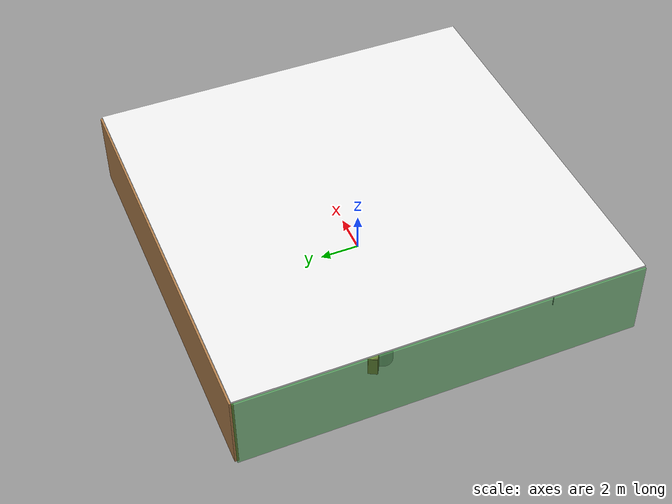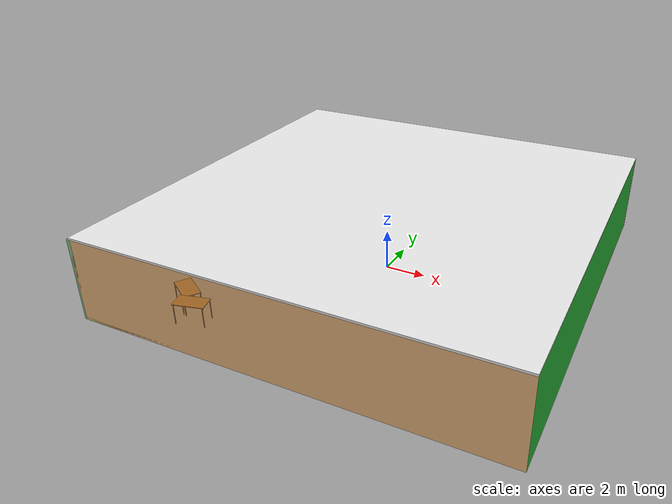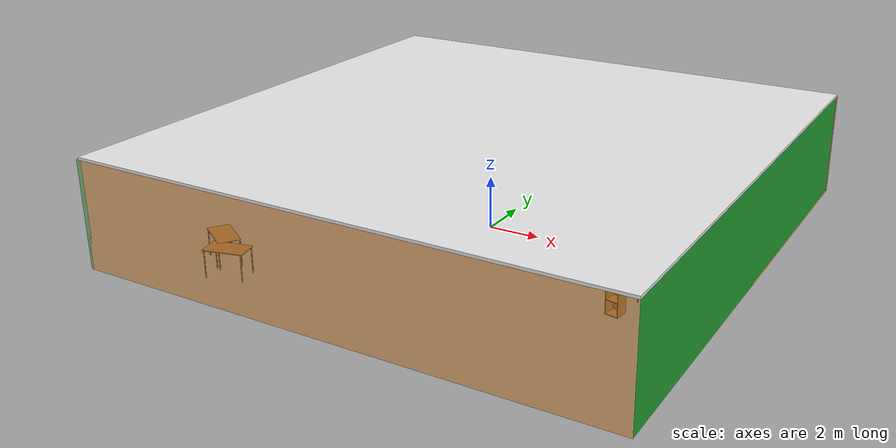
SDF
<sdf version="1.4">
 <world name="default">
  <physics type="ode">
   <max_step_size>0.001</max_step_size>
   <real_time_factor>1</real_time_factor>
   <real_time_update_rate>1000</real_time_update_rate>
   <gravity>0 0 -9.8</gravity>
  </physics>
  <scene><ambient>0.4 0.4 0.4 1</ambient><background>0.7 0.7 0.7 1</background><shadows>1</shadows></scene>
  <model name="Surrounding">
   <static>1</static>
   <link name="Ceiling">
    <collision name="Ceiling_Collision"><geometry><box><size>20 20 0.1</size></box></geometry></collision>
    <visual name="Ceiling_Visual">
     <geometry><box><size>20 20 0.1</size></box></geometry>
     <material>
      <script><uri>file://media/materials/scripts/gazebo.material</uri><name>Gazebo/WhiteGlow</name></script>
     </material>
    </visual>
    <pose>0 0 4.05 0 0 0</pose>
   </link>
   <link name="Wall_South">
    <collision name="Wall_South_Collision">
     <geometry><box><size>20 0 4</size></box></geometry>
     <pose>0 0 2 0 -0 0</pose>
    </collision>
    <visual name="Wall_South_Visual">
     <pose>0 0 2 0 -0 0</pose>
     <geometry><box><size>20 0 4</size></box></geometry>
     <material>
      <script>
       <uri>file://media/materials/scripts/gazebo.material</uri>
       <name>Gazebo/OrangeTransparent</name>
      </script>
     </material>
    </visual>
    <velocity_decay><linear>0</linear><angular>0</angular></velocity_decay>
    <pose>0 -10 0 0 -0 0</pose>
   </link>
   <link name="Wall_East">
    <collision name="Wall_21_Collision">
     <geometry><box><size>20 0 4</size></box></geometry>
     <pose>0 0 2 0 -0 0</pose>
    </collision>
    <visual name="Wall_21_Visual">
     <pose>0 0 2 0 -0 0</pose>
     <geometry><box><size>20 0 4</size></box></geometry>
     <material>
      <script><uri>file://media/materials/scripts/gazebo.material</uri><name>Gazebo/Green</name></script>
     </material>
    </visual>
    <velocity_decay><linear>0</linear><angular>0</angular></velocity_decay>
    <pose>10 0 0 0 -0 1.5708</pose>
   </link>
   <link name="Wall_North">
    <collision name="Wall_22_Collision">
     <geometry><box><size>20 0.2 4</size></box></geometry>
     <pose>0 0 2 0 -0 0</pose>
    </collision>
    <visual name="Wall_22_Visual">
     <pose>0 0 2 0 -0 0</pose>
     <geometry><box><size>20 0.2 4</size></box></geometry>
     <material>
      <script><uri>file://media/materials/scripts/gazebo.material</uri><name>Gazebo/WoodFloor</name></script>
     </material>
    </visual>
    <velocity_decay><linear>0</linear><angular>0</angular></velocity_decay>
    <pose>0 10 0 0 -0 0</pose>
   </link>
   <link name="Wall_West">
    <collision name="Wall_23_Collision">
     <geometry><box><size>20 0.2 4</size></box></geometry>
     <pose>0 0 2 0 -0 0</pose>
    </collision>
    <visual name="Wall_23_Visual">
     <pose>0 0 2 0 -0 0</pose>
     <geometry><box><size>20 0.2 4</size></box></geometry>
     <material>
      <script><uri>file://media/materials/scripts/gazebo.material</uri><name>Gazebo/GreenTransparent</name></script>
     </material>
    </visual>
    <velocity_decay><linear>0</linear><angular>0</angular></velocity_decay>
    <pose>-10 0 0 0 0 -1.5708</pose>
   </link>
   <link name="Ground_link">
    <collision name="collision">
     <pose>0 0 .05 0 -0 0</pose>
     <geometry><box><size>20 20 0.1</size></box></geometry>
    </collision>
    <visual name="visual">
     <pose>0 0 .05 0 -0 0</pose>
     <geometry><box><size>20 20 0.1</size></box></geometry>
     <material>
      <script>
       <uri>file://media/materials/scripts/gazebo.material</uri>
       <name>Gazebo/YellowTransparent</name>
      </script>
     </material>
    </visual>
   </link>
   <static>1</static>
  </model>
  <spherical_coordinates>
   <surface_model>EARTH_WGS84</surface_model>
   <latitude_deg>0</latitude_deg>
   <longitude_deg>0</longitude_deg>
   <elevation>0</elevation>
   <heading_deg>0</heading_deg>
  </spherical_coordinates>
  <light name="lightball_0" type="diffuse">
   <diffuse>0.8 0.8 0.8 1</diffuse>
   <specular>0.2 0.2 0.2 1</specular>
   <attenuation>
    <range>100</range>
    <constant>0.7</constant>
    <linear>0.01</linear>
    <quadratic>0.001</quadratic>
   </attenuation>
   <direction>-0.5 0.1 -0.9</direction>
   <pose>6.99097295968 -3.45821378181 2.87910520308 0 0 0</pose>
  </light>
  <light name="lightball_1" type="diffuse">
   <diffuse>0.8 0.8 0.8 1</diffuse>
   <specular>0.2 0.2 0.2 1</specular>
   <attenuation>
    <range>100</range>
    <constant>0.7</constant>
    <linear>0.01</linear>
    <quadratic>0.001</quadratic>
   </attenuation>
   <direction>-0.5 0.1 -0.9</direction>
   <pose>-4.11690492057 -9.9567745991 2.62143650819 0 0 0</pose>
  </light>
  <light name="lightball_2" type="diffuse">
   <diffuse>0.8 0.8 0.8 1</diffuse>
   <specular>0.2 0.2 0.2 1</specular>
   <attenuation>
    <range>100</range>
    <constant>0.7</constant>
    <linear>0.01</linear>
    <quadratic>0.001</quadratic>
   </attenuation>
   <direction>-0.5 0.1 -0.9</direction>
   <pose>-5.6639654438 6.21006644633 3.53866552867 0 0 0</pose>
  </light>
  <light name="lightball_3" type="diffuse">
   <diffuse>0.8 0.8 0.8 1</diffuse>
   <specular>0.2 0.2 0.2 1</specular>
   <attenuation>
    <range>100</range>
    <constant>0.7</constant>
    <linear>0.01</linear>
    <quadratic>0.001</quadratic>
   </attenuation>
   <direction>-0.5 0.1 -0.9</direction>
   <pose>5.58118659415 -6.22517165123 1.95073887856 0 0 0</pose>
  </light>
  <light name="lightball_4" type="diffuse">
   <diffuse>0.8 0.8 0.8 1</diffuse>
   <specular>0.2 0.2 0.2 1</specular>
   <attenuation>
    <range>100</range>
    <constant>0.7</constant>
    <linear>0.01</linear>
    <quadratic>0.001</quadratic>
   </attenuation>
   <direction>-0.5 0.1 -0.9</direction>
   <pose>-1.11242398058 6.68356759659 0.935816790602 0 0 0</pose>
  </light>
  <include><uri>model://table</uri><pose>-6.57539890443 -7.16558690031 0 0 0 2.57488310132</pose></include>
  <include><uri>model://cabinet</uri><pose>-7.66254551111 2.5070186889 0 0 0 2.63201600809</pose></include>
  <include><uri>model://table</uri><pose>-5.63606871078 -7.99810190832 0 0 0 0.246514657716</pose></include>
  <include>
   <uri>model://textured_shapes</uri>
   <pose>-5.39395216805 2.16544838549 0 0 0 1.91916783405</pose>
  </include>
  <include>
   <uri>model://textured_shapes</uri>
   <pose>-1.66349159075 -0.445728821676 0 0 0 1.22495547922</pose>
  </include>
  <include>
   <uri>model://robocup_3Dsim_goal</uri>
   <pose>4.81440562375 3.45063101623 0 0 0 2.50169005228</pose>
  </include>
  <include><uri>model://cabinet</uri><pose>6.83284040042 -3.98175866391 0 0 0 1.37483492966</pose></include>
  <include><uri>model://table</uri><pose>7.87684228947 -2.61065101384 0 0 0 3.02134930933</pose></include>
 </world>
</sdf>

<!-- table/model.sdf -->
<sdf version="1.5">
  <model name="table">
    <static>true</static>
    <link name="link">
      <collision name="surface">
        <pose>0 0 1.0 0 0 0</pose>
        <geometry>
          <box>
            <size>1.5 0.8 0.03</size>
          </box>
        </geometry>
        <surface>
          <friction>
            <ode>
              <mu>0.6</mu>
              <mu2>0.6</mu2>
            </ode>
          </friction>
        </surface>
      </collision>
      <visual name="visual1">
        <pose>0 0 1.0 0 0 0</pose>
        <geometry>
          <box>
            <size>1.5 0.8 0.03</size>
          </box>
        </geometry>
        <material>
          <script>
            <uri>model://media/materials/scripts/gazebo.material</uri>
            <name>Gazebo/Wood</name>
          </script>
        </material>
      </visual>
      <collision name="front_left_leg">
        <pose>0.68 0.38 0.5 0 0 0</pose>
        <geometry>
          <cylinder>
            <radius>0.02</radius>
            <length>1.0</length>
          </cylinder>
        </geometry>
      </collision>
      <visual name="front_left_leg">
        <pose>0.68 0.38 0.5 0 0 0</pose>
        <geometry>
          <cylinder>
            <radius>0.02</radius>
            <length>1.0</length>
          </cylinder>
        </geometry>
        <material>
          <script>
            <uri>model://media/materials/scripts/gazebo.material</uri>
            <name>Gazebo/Grey</name>
          </script>
        </material>
      </visual>
      <collision name="front_right_leg">
        <pose>0.68 -0.38 0.5 0 0 0</pose>
        <geometry>
          <cylinder>
            <radius>0.02</radius>
            <length>1.0</length>
          </cylinder>
        </geometry>
      </collision>
      <visual name="front_right_leg">
        <pose>0.68 -0.38 0.5 0 0 0</pose>
        <geometry>
          <cylinder>
            <radius>0.02</radius>
            <length>1.0</length>
          </cylinder>
        </geometry>
        <material>
          <script>
            <uri>model://media/materials/scripts/gazebo.material</uri>
            <name>Gazebo/Grey</name>
          </script>
        </material>
      </visual>
      <collision name="back_right_leg">
        <pose>-0.68 -0.38 0.5 0 0 0</pose>
        <geometry>
          <cylinder>
            <radius>0.02</radius>
            <length>1.0</length>
          </cylinder>
        </geometry>
      </collision>
      <visual name="back_right_leg">
        <pose>-0.68 -0.38 0.5 0 0 0</pose>
        <geometry>
          <cylinder>
            <radius>0.02</radius>
            <length>1.0</length>
          </cylinder>
        </geometry>
        <material>
          <script>
            <uri>model://media/materials/scripts/gazebo.material</uri>
            <name>Gazebo/Grey</name>
          </script>
        </material>
      </visual>
      <collision name="back_left_leg">
        <pose>-0.68 0.38 0.5 0 0 0</pose>
        <geometry>
          <cylinder>
            <radius>0.02</radius>
            <length>1.0</length>
          </cylinder>
        </geometry>
      </collision>
      <visual name="back_left_leg">
        <pose>-0.68 0.38 0.5 0 0 0</pose>
        <geometry>
          <cylinder>
            <radius>0.02</radius>
            <length>1.0</length>
          </cylinder>
        </geometry>
        <material>
          <script>
            <uri>model://media/materials/scripts/gazebo.material</uri>
            <name>Gazebo/Grey</name>
          </script>
        </material>
      </visual>
    </link>
  </model>
</sdf>

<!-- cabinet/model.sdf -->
<sdf version="1.5">
  <model name="cabinet">
    <static>true</static>
    <link name="cabinet_bottom_plate">
      <inertial>
        <pose>0 0 -1 0 0 0</pose>
        <inertia>
          <ixx>2.050000</ixx>
          <ixy>0</ixy>
          <ixz>0</ixz>
          <iyy>2.050000</iyy>
          <iyz>0</iyz>
          <izz>2.050000</izz>
        </inertia>
        <mass>25.000000</mass>
      </inertial>
      <collision name="cabinet_bottom_plate_geom">
        <pose>0 0 0.010000 0 0 0</pose>
        <geometry>
          <box>
            <size>0.450000 0.450000 0.020000</size>
          </box>
        </geometry>
      </collision>
      <visual name="cabinet_bottom_plate_geom_visual">
        <pose>0 0 0.010000 0 0 0</pose>
        <geometry>
          <box>
            <size>0.450000 0.450000 0.020000</size>
          </box>
        </geometry>
        <material>
          <script>
            <uri>model://media/materials/scripts/gazebo.material</uri>
            <name>Gazebo/Wood</name>
          </script>
        </material>
      </visual>
      <collision name="cabinet_bottom_plate_geom_cabinet_back_plate">
        <pose>0.235000 0 0.510000 0 0 0</pose>
        <geometry>
          <box>
            <size>0.020000 0.450000 1.020000</size>
          </box>
        </geometry>
      </collision>
      <visual name="cabinet_bottom_plate_geom_cabinet_back_plate_visual">
        <pose>0.235000 0 0.510000 0 0 0</pose>
        <geometry>
          <box>
            <size>0.020000 0.450000 1.020000</size>
          </box>
        </geometry>
        <material>
          <script>
            <uri>model://media/materials/scripts/gazebo.material</uri>
            <name>Gazebo/Wood</name>
          </script>
        </material>
      </visual>
      <collision name="cabinet_bottom_plate_geom_cabinet_left_plate">
        <pose>0 0.235000 0.510000 0 0 0</pose>
        <geometry>
          <box>
            <size>0.450000 0.020000 1.020000</size>
          </box>
        </geometry>
      </collision>
      <visual name="cabinet_bottom_plate_geom_cabinet_left_plate_visual">
        <pose>0 0.235000 0.510000 0 0 0</pose>
        <geometry>
          <box>
            <size>0.450000 0.020000 1.020000</size>
          </box>
        </geometry>
        <material>
          <script>
            <uri>model://media/materials/scripts/gazebo.material</uri>
            <name>Gazebo/Wood</name>
          </script>
        </material>
      </visual>
      <collision name="cabinet_bottom_plate_geom_cabinet_middle_plate">
        <pose>0 0 0.510000 0 0 0</pose>
        <geometry>
          <box>
            <size>0.450000 0.450000 0.020000</size>
          </box>
        </geometry>
      </collision>
      <visual name="cabinet_bottom_plate_geom_cabinet_middle_plate_visual">
        <pose>0 0 0.510000 0 0 0</pose>
        <geometry>
          <box>
            <size>0.450000 0.450000 0.020000</size>
          </box>
        </geometry>
        <material>
          <script>
            <uri>model://media/materials/scripts/gazebo.material</uri>
            <name>Gazebo/Wood</name>
          </script>
        </material>
      </visual>
      <collision name="cabinet_bottom_plate_geom_cabinet_right_plate">
        <pose>0 -0.235000 0.510000 0 0 0</pose>
        <geometry>
          <box>
            <size>0.450000 0.020000 1.020000</size>
          </box>
        </geometry>
      </collision>
      <visual name="cabinet_bottom_plate_geom_cabinet_right_plate_visual">
        <pose>0 -0.235000 0.510000 0 0 0</pose>
        <geometry>
          <box>
            <size>0.450000 0.020000 1.020000</size>
          </box>
        </geometry>
        <material>
          <script>
            <uri>model://media/materials/scripts/gazebo.material</uri>
            <name>Gazebo/Wood</name>
          </script>
        </material>
      </visual>
      <collision name="cabinet_bottom_plate_geom_cabinet_top_plate">
        <pose>0 0 1.010000 0 0 0</pose>
        <geometry>
          <box>
            <size>0.450000 0.450000 0.020000</size>
          </box>
        </geometry>
      </collision>
      <visual name="cabinet_bottom_plate_geom_cabinet_top_plate_visual">
        <pose>0 0 1.010000 0 0 0</pose>
        <geometry>
          <box>
            <size>0.450000 0.450000 0.020000</size>
          </box>
        </geometry>
        <material>
          <script>
            <uri>model://media/materials/scripts/gazebo.material</uri>
            <name>Gazebo/Wood</name>
          </script>
        </material>
      </visual>
    </link>
  </model>
</sdf>

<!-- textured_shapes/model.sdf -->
<sdf version="1.6">
  <model name="textured_shapes">
    <pose>0 0 0.5 0 0 0</pose>
    <link name="box">
      <pose>0 -1.5 0 0 0 0</pose>
      <collision name="collision">
        <geometry>
          <box>
            <size>1 1 1</size>
          </box>
        </geometry>
      </collision>
      <visual name="visual">
        <geometry>
          <box>
            <size>1 1 1</size>
          </box>
        </geometry>
        <material>
          <script>
            <uri>model://../model_source/models/textured_shapes/materials/scripts</uri>
            <uri>model://../model_source/models/textured_shapes/materials/textures</uri>
            <name>TexturedShape/Squares</name>
          </script>
        </material>
      </visual>
    </link>
    <link name="sphere">
      <collision name="collision">
        <geometry>
          <sphere>
            <radius>0.5</radius>
          </sphere>
        </geometry>
      </collision>
      <visual name="visual">
        <geometry>
          <sphere>
            <radius>0.5</radius>
          </sphere>
        </geometry>
        <material>
          <script>
            <uri>model://../model_source/models/textured_shapes/materials/scripts</uri>
            <uri>model://../model_source/models/textured_shapes/materials/textures</uri>
            <name>TexturedShape/Squares</name>
          </script>
        </material>
      </visual>
    </link>
    <link name="cylinder">
      <pose>0 1.5 0 0 0 0</pose>
      <collision name="collision">
        <geometry>
          <cylinder>
            <radius>0.5</radius>
            <length>1</length>
          </cylinder>
        </geometry>
      </collision>
      <visual name="visual">
        <geometry>
          <cylinder>
            <radius>0.5</radius>
            <length>1</length>
          </cylinder>
        </geometry>
        <material>
          <script>
            <uri>model://../model_source/models/textured_shapes/materials/scripts</uri>
            <uri>model://../model_source/models/textured_shapes/materials/textures</uri>
            <name>TexturedShape/Squares</name>
          </script>
        </material>
      </visual>
    </link>
  </model>
</sdf>

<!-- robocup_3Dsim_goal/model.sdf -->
<sdf version="1.5">
  <model name="robocup_3d_goal">
    <static>true</static>
    <link name="left_post">
      <pose>0 1.05 0.45 0 0 0</pose>
      <collision name="collision">
        <geometry>
          <cylinder>
            <radius>0.05</radius>
            <length>0.9</length>
          </cylinder>
        </geometry>
      </collision>
      <visual name="visual">
        <geometry>
          <cylinder>
            <radius>0.05</radius>
            <length>0.9</length>
          </cylinder>
        </geometry>
        <material>
          <script>
            <uri>file://media/materials/scripts/gazebo.material</uri>
            <name>Gazebo/ZincYellow</name>
          </script>
        </material>
      </visual>
    </link>
    <link name="left_support_horiz_lower">
      <pose>0.30 1.05 0.01 0 0 0</pose>
      <collision name="collision">
        <geometry>
          <box>
            <size>0.50 0.02 0.02</size>
          </box>
        </geometry>
      </collision>
      <visual name="visual">
        <geometry>
          <box>
            <size>0.50 0.02 0.02</size>
          </box>
        </geometry>
        <material>
          <script>
            <uri>file://media/materials/scripts/gazebo.material</uri>
            <name>Gazebo/White</name>
          </script>
        </material>
      </visual>
    </link>
    <link name="left_support_horiz_upper">
      <pose>0.30 1.05 0.79 0 0 0</pose>
      <collision name="collision">
        <geometry>
          <box>
            <size>0.50 0.02 0.02</size>
          </box>
        </geometry>
      </collision>
      <visual name="visual">
        <geometry>
          <box>
            <size>0.50 0.02 0.02</size>
          </box>
        </geometry>
        <material>
          <script>
            <uri>file://media/materials/scripts/gazebo.material</uri>
            <name>Gazebo/White</name>
          </script>
        </material>
      </visual>
    </link>
    <link name="left_support_vertical">
      <pose>0.56 1.05 0.4 0 1.5708 0</pose>
      <collision name="collision">
        <geometry>
          <box>
            <size>0.80 0.02 0.02</size>
          </box>
        </geometry>
      </collision>
      <visual name="visual">
        <geometry>
          <box>
            <size>0.80 0.02 0.02</size>
          </box>
        </geometry>
        <material>
          <script>
            <uri>file://media/materials/scripts/gazebo.material</uri>
            <name>Gazebo/White</name>
          </script>
        </material>
      </visual>
    </link>
    <link name="right_support_horiz_lower">
      <pose>0.30 -1.05 0.01 0 0 0</pose>
      <collision name="collision">
        <geometry>
          <box>
            <size>0.50 0.02 0.02</size>
          </box>
        </geometry>
      </collision>
      <visual name="visual">
        <geometry>
          <box>
            <size>0.50 0.02 0.02</size>
          </box>
        </geometry>
        <material>
          <script>
            <uri>file://media/materials/scripts/gazebo.material</uri>
            <name>Gazebo/White</name>
          </script>
        </material>
      </visual>
    </link>
    <link name="right_support_horiz_upper">
      <pose>0.30 -1.05 0.79 0 0 0</pose>
      <collision name="collision">
        <geometry>
          <box>
            <size>0.50 0.02 0.02</size>
          </box>
        </geometry>
      </collision>
      <visual name="visual">
        <geometry>
          <box>
            <size>0.50 0.02 0.02</size>
          </box>
        </geometry>
        <material>
          <script>
            <uri>file://media/materials/scripts/gazebo.material</uri>
            <name>Gazebo/White</name>
          </script>
        </material>
      </visual>
    </link>
    <link name="right_support_vertical">
      <pose>0.56 -1.05 0.4 0 1.5708 0</pose>
      <collision name="collision">
        <geometry>
          <box>
            <size>0.80 0.02 0.02</size>
          </box>
        </geometry>
      </collision>
      <visual name="visual">
        <geometry>
          <box>
            <size>0.80 0.02 0.02</size>
          </box>
        </geometry>
        <material>
          <script>
            <uri>file://media/materials/scripts/gazebo.material</uri>
            <name>Gazebo/White</name>
          </script>
        </material>
      </visual>
    </link>
    <link name="center_support_horiz_lower">
      <pose>0.56 0 0.01 0 1.5708 0</pose>
      <collision name="collision">
        <geometry>
          <box>
            <size>0.02 2.08 0.02</size>
          </box>
        </geometry>
      </collision>
      <visual name="visual">
        <geometry>
          <box>
            <size>0.02 2.08 0.02</size>
          </box>
        </geometry>
        <material>
          <script>
            <uri>file://media/materials/scripts/gazebo.material</uri>
            <name>Gazebo/White</name>
          </script>
        </material>
      </visual>
    </link>
    <link name="center_support_horiz_upper">
      <pose>0.56 0 0.79 0 1.5708 0</pose>
      <collision name="collision">
        <geometry>
          <box>
            <size>0.02 2.08 0.02</size>
          </box>
        </geometry>
      </collision>
      <visual name="visual">
        <geometry>
          <box>
            <size>0.02 2.08 0.02</size>
          </box>
        </geometry>
        <material>
          <script>
            <uri>file://media/materials/scripts/gazebo.material</uri>
            <name>Gazebo/White</name>
          </script>
        </material>
      </visual>
    </link>
    <link name="right_post">
      <pose>0 -1.05 0.45 0 0 0</pose>
      <collision name="collision">
        <geometry>
          <cylinder>
            <radius>0.05</radius>
            <length>0.9</length>
          </cylinder>
        </geometry>
      </collision>
      <visual name="visual">
        <geometry>
          <cylinder>
            <radius>0.05</radius>
            <length>0.9</length>
          </cylinder>
        </geometry>
        <material>
          <script>
            <uri>file://media/materials/scripts/gazebo.material</uri>
            <name>Gazebo/ZincYellow</name>
          </script>
        </material>
      </visual>
    </link>
    <link name="crossbar">
      <pose>0 0 0.85 1.57 1.57 0</pose>
      <collision name="collision">
        <geometry>
          <cylinder>
            <radius>0.05</radius>
            <length>2.0</length>
          </cylinder>
        </geometry>
      </collision>
      <visual name="visual">
        <geometry>
          <cylinder>
            <radius>0.05</radius>
            <length>2.0</length>
          </cylinder>
        </geometry>
        <material>
          <script>
            <uri>file://media/materials/scripts/gazebo.material</uri>
            <name>Gazebo/ZincYellow</name>
          </script>
        </material>
      </visual>
    </link>
    <link name="center_net">
      <pose>0.56 0 0.40 0 0 0</pose>
      <collision name="collision">
        <geometry>
          <box>
            <size>0.01 2.1 0.80</size>
          </box>
        </geometry>
      </collision>
      <visual name="visual">
        <geometry>
          <box>
            <size>0.01 2.1 0.80</size>
          </box>
        </geometry>
        <material>
          <script>
            <uri>model://../model_source/models/robocup09_spl_field/materials/scripts/</uri>
            <uri>model://../model_source/models/robocup09_spl_field/materials/textures/</uri>
            <name>RoboCup/Net</name>
          </script>
        </material>
      </visual>
    </link>
    <link name="left_net">
      <pose>0.30 1.05 0.40 0 0 0</pose>
      <collision name="collision">
        <geometry>
          <box>
            <size>0.50 0.01 0.76</size>
          </box>
        </geometry>
      </collision>
      <visual name="visual">
        <geometry>
          <box>
            <size>0.50 0.01 0.76</size>
          </box>
        </geometry>
        <material>
          <script>
            <uri>model://../model_source/models/robocup09_spl_field/materials/scripts/</uri>
            <uri>model://../model_source/models/robocup09_spl_field/materials/textures/</uri>
            <name>RoboCup/Net</name>
          </script>
        </material>
      </visual>
    </link>
    <link name="right_net">
      <pose>0.30 -1.05 0.40 0 0 0</pose>
      <collision name="collision">
        <geometry>
          <box>
            <size>0.50 0.01 0.76</size>
          </box>
        </geometry>
      </collision>
      <visual name="visual">
        <geometry>
          <box>
            <size>0.50 0.01 0.76</size>
          </box>
        </geometry>
        <material>
          <script>
            <uri>model://../model_source/models/robocup09_spl_field/materials/scripts/</uri>
            <uri>model://../model_source/models/robocup09_spl_field/materials/textures/</uri>
            <name>RoboCup/Net</name>
          </script>
        </material>
      </visual>
    </link>
  </model>
</sdf>
